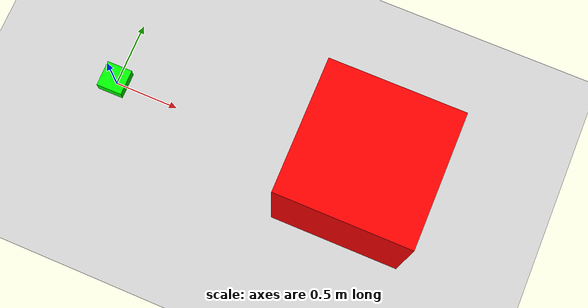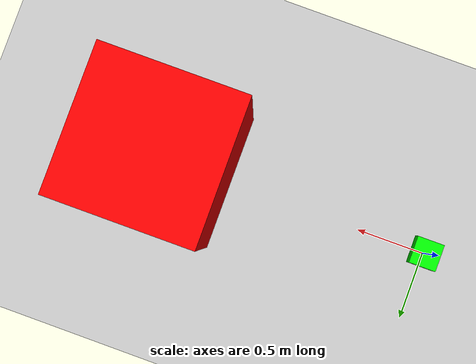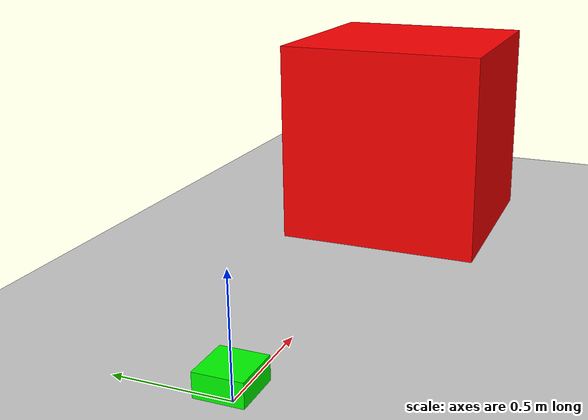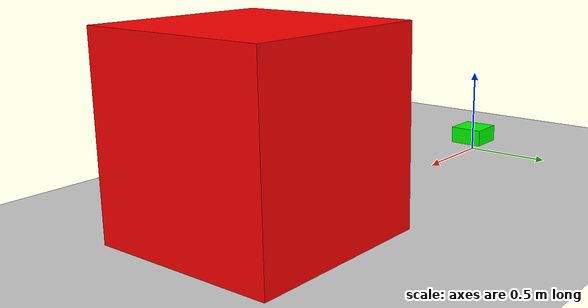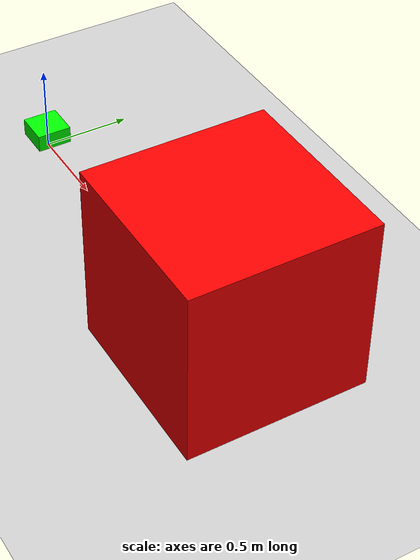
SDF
<?xml version="1.0" ?>
<sdf version="1.6">
  <world name="minimal_lidar_test">
    <physics name="1ms" type="ignored">
      <max_step_size>0.001</max_step_size>
      <real_time_factor>1.0</real_time_factor>
    </physics>

    <plugin
      filename="libignition-gazebo-physics-system.so"
      name="ignition::gazebo::systems::Physics">
    </plugin>

    <plugin
      filename="libignition-gazebo-sensors-system.so"
      name="ignition::gazebo::systems::Sensors">
      <render_engine>ogre2</render_engine>
    </plugin>

    <plugin
      filename="libignition-gazebo-scene-broadcaster-system.so"
      name="ignition::gazebo::systems::SceneBroadcaster">
    </plugin>

    <light type="directional" name="sun">
      <cast_shadows>true</cast_shadows>
      <pose>0 0 10 0 0 0</pose>
      <diffuse>0.8 0.8 0.8 1</diffuse>
      <specular>0.2 0.2 0.2 1</specular>
      <attenuation>
        <range>1000</range>
        <constant>0.9</constant>
        <linear>0.01</linear>
        <quadratic>0.001</quadratic>
      </attenuation>
      <direction>-0.5 0.1 -0.9</direction>
    </light>

    <model name="ground_plane">
      <static>true</static>
      <link name="link">
        <collision name="collision">
          <geometry>
            <plane>
              <normal>0 0 1</normal>
            </plane>
          </geometry>
        </collision>
        <visual name="visual">
          <geometry>
            <plane>
              <normal>0 0 1</normal>
              <size>100 100</size>
            </plane>
          </geometry>
          <material>
            <ambient>0.8 0.8 0.8 1</ambient>
            <diffuse>0.8 0.8 0.8 1</diffuse>
            <specular>0.8 0.8 0.8 1</specular>
          </material>
        </visual>
      </link>
    </model>

    <!-- Simple box robot with lidar -->
    <model name="minimal_robot">
      <pose>0 0 0.1 0 0 0</pose>

      <!-- Main body -->
      <link name="base_link">
        <pose>0 0 0 0 0 0</pose>
        <inertial>
          <mass>1.0</mass>
          <inertia>
            <ixx>0.083</ixx>
            <ixy>0.0</ixy>
            <ixz>0.0</ixz>
            <iyy>0.083</iyy>
            <iyz>0.0</iyz>
            <izz>0.083</izz>
          </inertia>
        </inertial>
        <collision name="collision">
          <geometry>
            <box>
              <size>0.2 0.2 0.1</size>
            </box>
          </geometry>
        </collision>
        <visual name="visual">
          <geometry>
            <box>
              <size>0.2 0.2 0.1</size>
            </box>
          </geometry>
          <material>
            <ambient>0.0 1.0 0.0 1</ambient>
            <diffuse>0.0 1.0 0.0 1</diffuse>
            <specular>0.0 1.0 0.0 1</specular>
          </material>
        </visual>
      </link>

      <!-- Lidar sensor -->
      <link name="lidar_link">
        <pose>0 0 0.1 0 0 0</pose>
        <sensor type="lidar" name="lidar_sensor">
          <pose>0 0 0 0 0 0</pose>
          <always_on>true</always_on>
          <visualize>true</visualize>
          <update_rate>10</update_rate>
          <topic>scan</topic>
          <lidar>
            <scan>
              <horizontal>
                <samples>360</samples>
                <resolution>1</resolution>
                <min_angle>-3.14159</min_angle>
                <max_angle>3.14159</max_angle>
              </horizontal>
            </scan>
            <range>
              <min>0.15</min>
              <max>12.0</max>
              <resolution>0.01</resolution>
            </range>
            <noise>
              <type>gaussian</type>
              <mean>0.0</mean>
              <stddev>0.01</stddev>
            </noise>
          </lidar>
        </sensor>
      </link>

      <!-- Joint between base and lidar -->
      <joint name="lidar_joint" type="fixed">
        <parent>base_link</parent>
        <child>lidar_link</child>
        <pose>0 0 0.1 0 0 0</pose>
      </joint>
    </model>

    <!-- Add some objects to scan -->
    <model name="box1">
      <pose>2 0 0.5 0 0 0</pose>
      <static>true</static>
      <link name="link">
        <collision name="collision">
          <geometry>
            <box>
              <size>1 1 1</size>
            </box>
          </geometry>
        </collision>
        <visual name="visual">
          <geometry>
            <box>
              <size>1 1 1</size>
            </box>
          </geometry>
          <material>
            <ambient>1.0 0.0 0.0 1</ambient>
            <diffuse>1.0 0.0 0.0 1</diffuse>
            <specular>1.0 0.0 0.0 1</specular>
          </material>
        </visual>
      </link>
    </model>

  </world>
</sdf>
